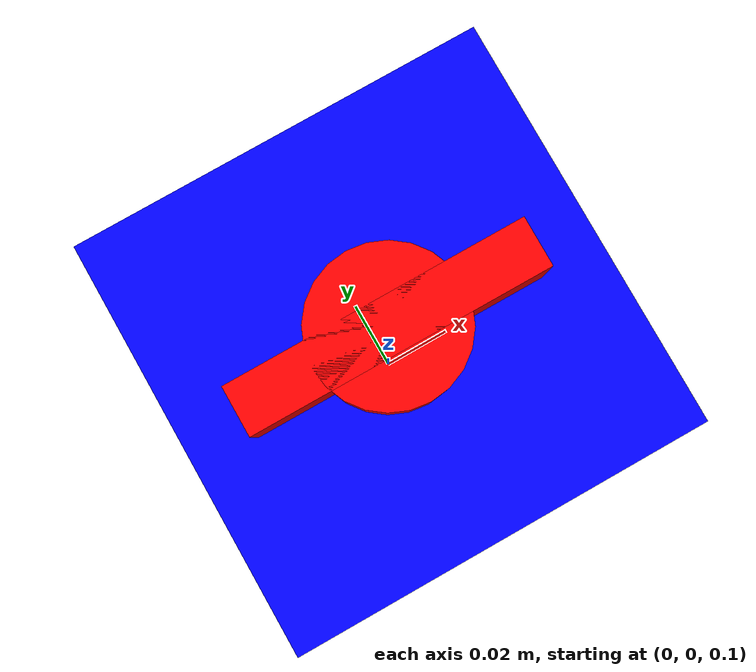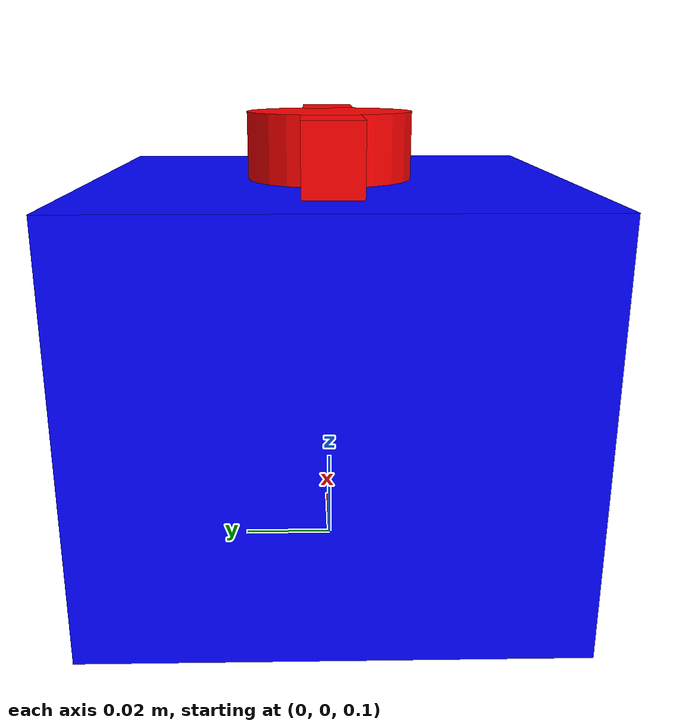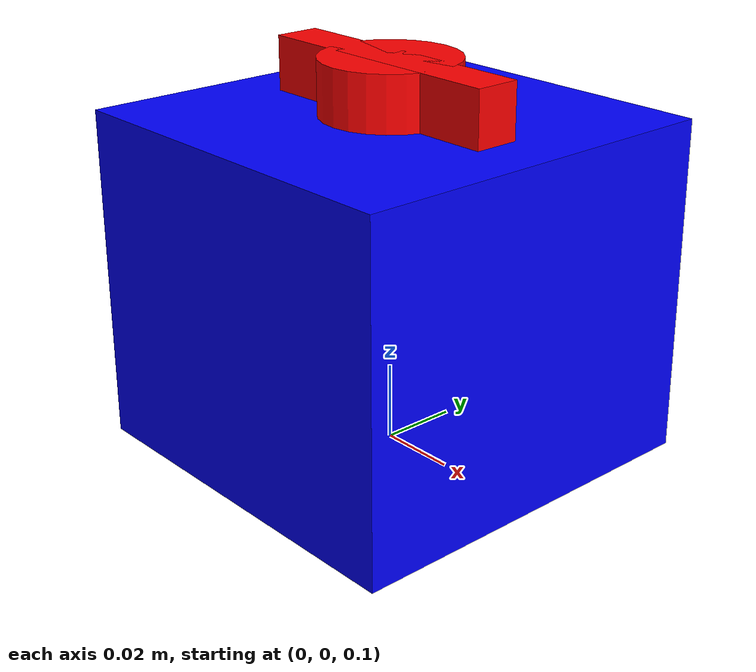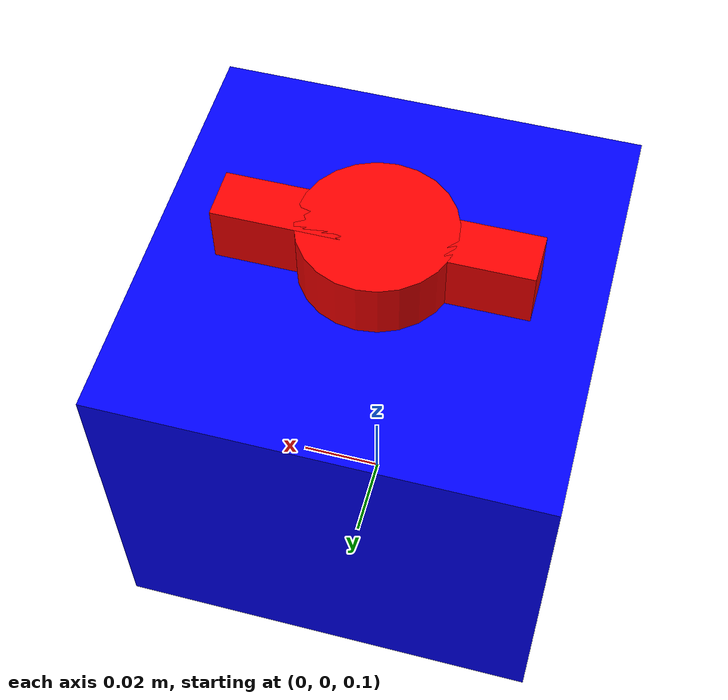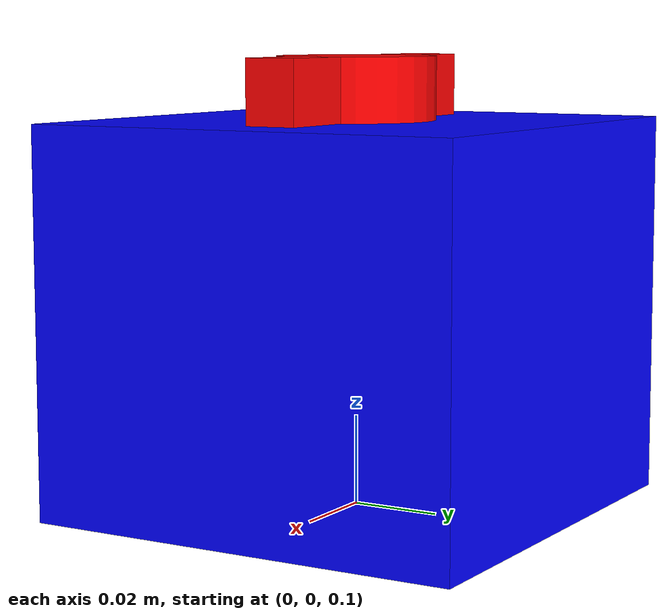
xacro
<robot xmlns:xacro="http://www.ros.org/wiki/xacro" name="power_unit_v3">

    <xacro:include filename="ros2_control/ros2_control.urdf.xacro" />
    <xacro:include filename="macros/link_macros.urdf.xacro" />
    <xacro:include filename="gazebo/gz_properties.urdf.xacro" />
    <xacro:include filename="gazebo/gazebo.urdf.xacro" />
    <xacro:property name="body_l" value="0.1" />
    <xacro:property name="body_w" value="0.1" />
    <xacro:property name="body_h" value="0.086" />
    <xacro:property name="shaft_h" value="0.014" />
    <xacro:property name="shaft_d" value="0.035" />

    <link name="world" />

    <xacro:stator_link_macro
    length="${body_l}"
    width="${body_w}"
    height="${body_h}"
    mass="10.0"
    xc="0" yc="0" zc="${body_h/2.0}"
    ixx="${0.17}" ixy="${0.0}" ixz="${0.0}"
    iyy="${0.22}" iyz="${0.0}"
    izz="${0.25}" />

    <xacro:rotor_link_macro
    d="${shaft_d}"
    length="${shaft_h}"
    mass="0.585"
    xc="0.0" yc="0.0" zc="11.664"
    ixx="56.082" ixy="0.0" ixz="0.0"
    iyy="56.082" iyz="0.0"
    izz="105.479" />

    <joint name="base_joint" type="fixed">
        <parent link="world" />
        <child link="stator_link" />
        <origin xyz="0 0 0.1" rpy="0 0 0" />
    </joint>

    <joint name="shaft_joint" type="revolute">
        <parent link="stator_link" />
        <child link="rotor_link" />
        <origin xyz="0 0 ${body_h}" rpy="0 0 0" />
        <limit lower="${-1000*pi}" upper="${1000*pi}"
        effort="${motor_max_torque*reduction}" velocity="${motor_max_vel*pi/30/reduction}" />
        <dynamics friction="0.0" damping="0.0" />
        <axis xyz="0 0 1" />
    </joint>

</robot>

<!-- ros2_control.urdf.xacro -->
<robot xmlns:xacro="http://www.ros.org/wiki/xacro">

    <xacro:include filename="ros2_control_macros.urdf.xacro" />
    <xacro:include filename="hardware_properties.urdf.xacro" />

    <ros2_control name="power_unit_v3" type="system">
        <hardware>
            <plugin>ign_ros2_control/IgnitionSystem</plugin>
        </hardware>
        <!-- Add joint hardware interfaces -->
        <xacro:include filename="ros2_control_macros.urdf.xacro" />
        <xacro:ros2_control_joint_macro name="shaft" pos_min="${-pi}" pos_max="${pi}" vel_max="${(motor_max_vel*pi/30.0)/reduction}" eff_max="${motor_max_torque*reduction}"/>
    </ros2_control>

    <gazebo>
        <plugin filename="ign_ros2_control-system" name="ign_ros2_control::IgnitionROS2ControlPlugin">
            <parameters>$(find power_unit_v3)/controllers/joint_controller.yaml</parameters>
        </plugin>
    </gazebo>

</robot>

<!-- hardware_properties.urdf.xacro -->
<robot xmlns:xacro="http://www.ros.org/wiki/xacro">

    <xacro:property name="reduction" value="9.97" />
    <!-- MAX MOTOR SPEED RPM -->
    <xacro:property name="motor_max_vel" value="1800" />
    <xacro:property name="motor_max_torque" value="3.5" />

</robot>

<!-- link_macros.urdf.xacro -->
<robot xmlns:xacro="http://www.ros.org/wiki/xacro">

    <xacro:macro name="stator_link_macro" params="length width height mass xc yc zc ixx ixy ixz iyy iyz izz">
        <link name="stator_link">

            <visual>
                <material name="">
                    <color rgba="0.0 0.0 1.0 1.0"/>
                </material>
                <geometry>
                    <box size="${length} ${width} ${height}" />
                </geometry>
                <origin xyz="0 0 ${height/2.0}" rpy="0 0 0" />
            </visual>

            <collision>
                <geometry>
                    <box size="${length} ${width} ${height}" />
                </geometry>
                <origin xyz="0 0 ${height/2.0}" rpy="0 0 0" />
            </collision>

            <inertial>
                <mass value="${mass}"/>
                <origin xyz="${xc} ${yc} ${zc}" rpy="0 0 0" />
                <inertia ixx="${ixx}" ixy="${ixy}" ixz="${ixz}"
                                      iyy="${iyy}" iyz="${iyz}"
                                                   izz="${izz}" />
            </inertial>

        </link>

    </xacro:macro>

    <xacro:macro name="rotor_link_macro" params="d length mass xc yc zc ixx ixy ixz iyy iyz izz">
        <link name="rotor_link">

            <visual>
                <material name="">
                    <color rgba="1.0 0.0 0.0 1.0"/>
                </material>
                <geometry>
                    <cylinder radius="${d/2.0}" length="${length}" />
                </geometry>
                <origin xyz="0 0 ${length/2}" rpy="0 0 0" />
            </visual>

            <visual>
                <material name="">
                    <color rgba="1.0 0.0 0.0 1.0"/>
                </material>
                <geometry>
                    <box size="${2*d} ${d/3.0} ${length}" />
                </geometry>
                <origin xyz="0 0 ${length/2}" rpy="0 0 0" />
            </visual>

            <collision>
                <geometry>
                    <cylinder radius="${d/2.0}" length="${length}" />
                </geometry>
                <origin xyz="0 0 ${length/2}" rpy="0 0 0" />
            </collision>

            <inertial>
                <mass value="${mass}"/>
                <origin xyz="${xc*0.001} ${yc*0.001} ${zc*0.001}" rpy="0 0 0" />
                <inertia ixx="${ixx*0.000001}" ixy="${ixy*0.000001}" ixz="${ixz*0.000001}"
                                      iyy="${iyy*0.000001}" iyz="${iyz*0.000001}"
                                                   izz="${izz*0.000001}" />
            </inertial>

        </link>

    </xacro:macro>

</robot>

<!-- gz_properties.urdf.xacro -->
<robot xmlns:xacro="http://www.ros.org/wiki/xacro">

    <!-- Gazebo joint parameters -->
    <xacro:property name="implicitSpringDamper_value" value="0" />
    <xacro:property name="springStiffness_value" value="0.0" />
    <xacro:property name="springReference_value" value="0.0" />
    <xacro:property name="stopErp_value" value="0.0" />
    <xacro:property name="stopCfm_value" value="0.0" />

    <!-- Gazebo link parameters -->
    <xacro:property name="mu1_value" value="0" />
    <xacro:property name="mu2_value" value="0" />
    <xacro:property name="kp_value" value="0" />
    <xacro:property name="kd_value" value="0" />
    <xacro:property name="maxVel_value" value="0" />
    <xacro:property name="dampingFactor_value" value="0" />

</robot>
